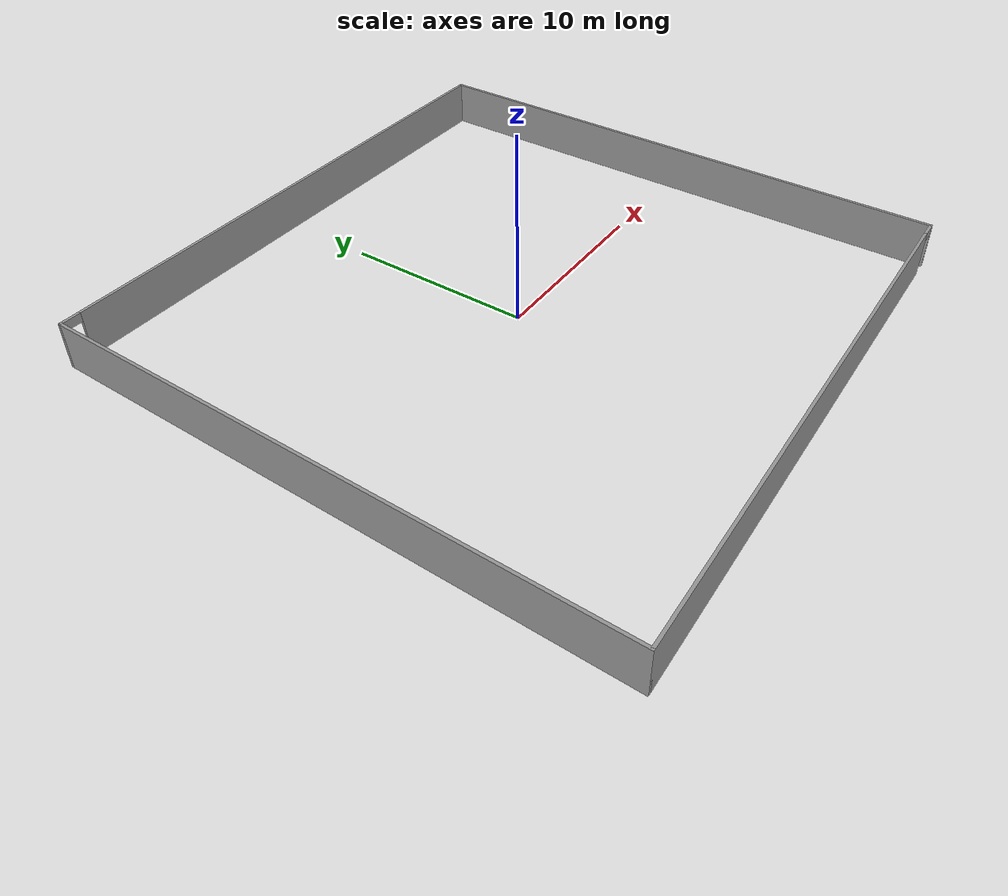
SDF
<?xml version='1.0'?>
<sdf version='1.6'>
  <model name='30x30'>
    <pose frame=''>0.532907 0.000408 0 0 -0 0</pose>
    <link name='Wall_2'>
      <collision name='Wall_2_Collision'>
        <geometry>
          <box>
            <size>30 0.15 2.5</size>
          </box>
        </geometry>
        <pose frame=''>0 0 1.25 0 -0 0</pose>
      </collision>
      <visual name='Wall_2_Visual'>
        <pose frame=''>0 0 1.25 0 -0 0</pose>
        <geometry>
          <box>
            <size>30 0.15 2.5</size>
          </box>
        </geometry>
        <material>
          <script>
            <uri>file://media/materials/scripts/gazebo.material</uri>
            <name>Gazebo/Grey</name>
          </script>
          <ambient>1 1 1 1</ambient>
        </material>
      </visual>
      <pose frame=''>-14.925 0 0 0 0 -1.5708</pose>
    </link>
    <link name='Wall_3'>
      <pose frame=''>0 -14.925 0 0 -0 0</pose>
      <visual name='Wall_3_Visual_0'>
        <pose frame=''>-0.482338 0 1.25 0 -0 0</pose>
        <geometry>
          <box>
            <size>29.0353 0.15 2.5</size>
          </box>
        </geometry>
        <material>
          <script>
            <uri>file://media/materials/scripts/gazebo.material</uri>
            <name>Gazebo/Grey</name>
          </script>
          <ambient>1 1 1 1</ambient>
        </material>
      </visual>
      <collision name='Wall_3_Collision_0'>
        <geometry>
          <box>
            <size>29.0353 0.15 2.5</size>
          </box>
        </geometry>
        <pose frame=''>-0.482338 0 1.25 0 -0 0</pose>
      </collision>
      <visual name='Wall_3_Visual_1'>
        <pose frame=''>14.9677 0 1.25 0 -0 0</pose>
        <geometry>
          <box>
            <size>0.064676 0.15 2.5</size>
          </box>
        </geometry>
        <material>
          <script>
            <uri>file://media/materials/scripts/gazebo.material</uri>
            <name>Gazebo/Grey</name>
          </script>
          <ambient>1 1 1 1</ambient>
        </material>
      </visual>
      <collision name='Wall_3_Collision_1'>
        <geometry>
          <box>
            <size>0.064676 0.15 2.5</size>
          </box>
        </geometry>
        <pose frame=''>14.9677 0 1.25 0 -0 0</pose>
      </collision>
      <visual name='Wall_3_Visual_2'>
        <pose frame=''>14.4853 0 2.25 0 -0 0</pose>
        <geometry>
          <box>
            <size>0.9 0.15 0.5</size>
          </box>
        </geometry>
        <material>
          <script>
            <uri>file://media/materials/scripts/gazebo.material</uri>
            <name>Gazebo/Grey</name>
          </script>
          <ambient>1 1 1 1</ambient>
        </material>
      </visual>
      <collision name='Wall_3_Collision_2'>
        <geometry>
          <box>
            <size>0.9 0.15 0.5</size>
          </box>
        </geometry>
        <pose frame=''>14.4853 0 2.25 0 -0 0</pose>
      </collision>
    </link>
    <link name='Wall_4'>
      <collision name='Wall_4_Collision'>
        <geometry>
          <box>
            <size>30 0.15 2.5</size>
          </box>
        </geometry>
        <pose frame=''>0 0 1.25 0 -0 0</pose>
      </collision>
      <visual name='Wall_4_Visual'>
        <pose frame=''>0 0 1.25 0 -0 0</pose>
        <geometry>
          <box>
            <size>30 0.15 2.5</size>
          </box>
        </geometry>
        <material>
          <script>
            <uri>file://media/materials/scripts/gazebo.material</uri>
            <name>Gazebo/Grey</name>
          </script>
          <ambient>1 1 1 1</ambient>
        </material>
      </visual>
      <pose frame=''>14.925 0 0 0 -0 1.5708</pose>
    </link>
    <link name='Wall_5'>
      <pose frame=''>0 14.925 0 0 -0 3.14159</pose>
      <visual name='Wall_5_Visual_0'>
        <pose frame=''>-0.539376 0 1.25 0 -0 0</pose>
        <geometry>
          <box>
            <size>28.9212 0.15 2.5</size>
          </box>
        </geometry>
        <material>
          <script>
            <uri>file://media/materials/scripts/gazebo.material</uri>
            <name>Gazebo/Grey</name>
          </script>
          <ambient>1 1 1 1</ambient>
        </material>
      </visual>
      <collision name='Wall_5_Collision_0'>
        <geometry>
          <box>
            <size>28.9212 0.15 2.5</size>
          </box>
        </geometry>
        <pose frame=''>-0.539376 0 1.25 0 -0 0</pose>
      </collision>
      <visual name='Wall_5_Visual_1'>
        <pose frame=''>14.9106 0 1.25 0 -0 0</pose>
        <geometry>
          <box>
            <size>0.178751 0.15 2.5</size>
          </box>
        </geometry>
        <material>
          <script>
            <uri>file://media/materials/scripts/gazebo.material</uri>
            <name>Gazebo/Grey</name>
          </script>
          <ambient>1 1 1 1</ambient>
        </material>
      </visual>
      <collision name='Wall_5_Collision_1'>
        <geometry>
          <box>
            <size>0.178751 0.15 2.5</size>
          </box>
        </geometry>
        <pose frame=''>14.9106 0 1.25 0 -0 0</pose>
      </collision>
      <visual name='Wall_5_Visual_2'>
        <pose frame=''>14.3712 0 2.25 0 -0 0</pose>
        <geometry>
          <box>
            <size>0.9 0.15 0.5</size>
          </box>
        </geometry>
        <material>
          <script>
            <uri>file://media/materials/scripts/gazebo.material</uri>
            <name>Gazebo/Grey</name>
          </script>
          <ambient>1 1 1 1</ambient>
        </material>
      </visual>
      <collision name='Wall_5_Collision_2'>
        <geometry>
          <box>
            <size>0.9 0.15 0.5</size>
          </box>
        </geometry>
        <pose frame=''>14.3712 0 2.25 0 -0 0</pose>
      </collision>
    </link>
    <static>1</static>
  </model>
</sdf>
